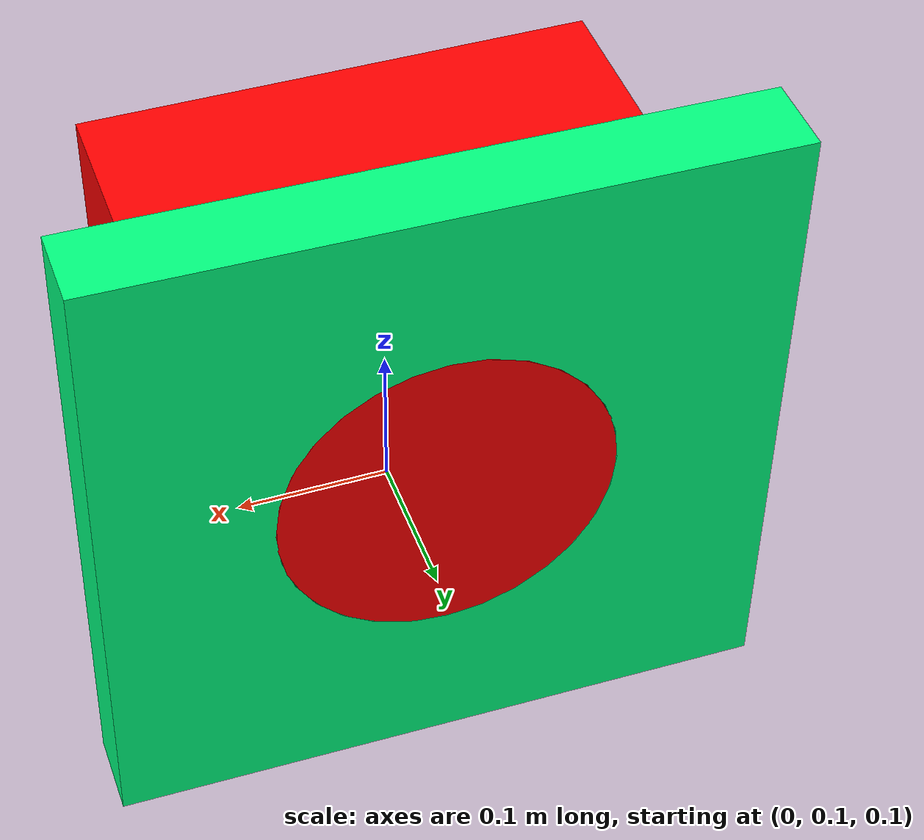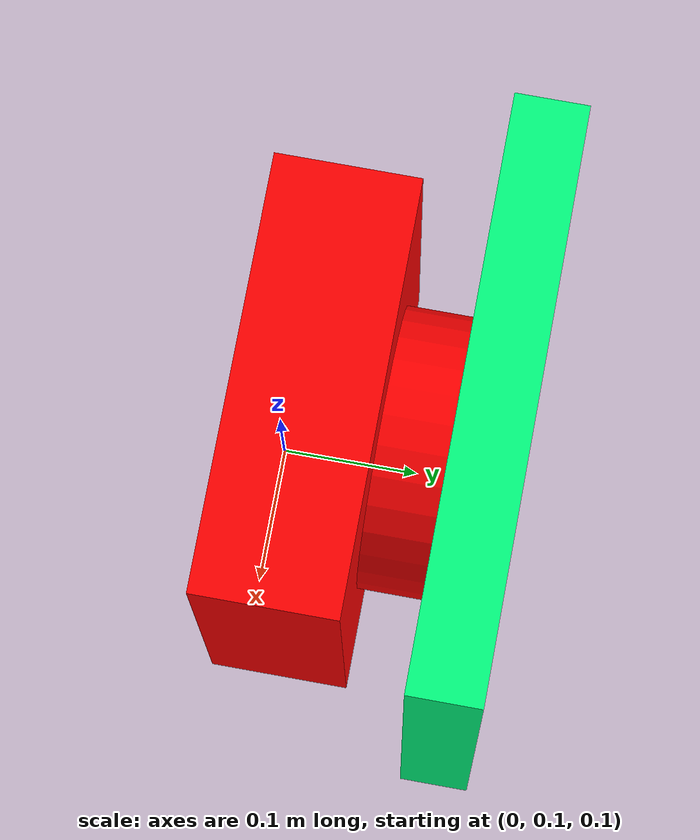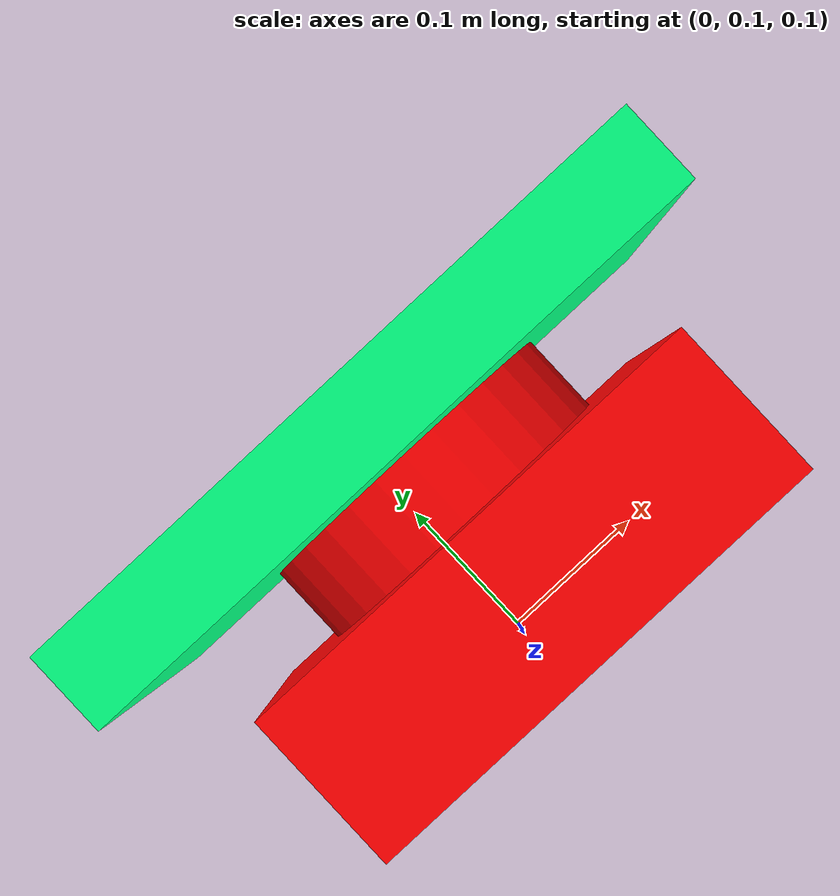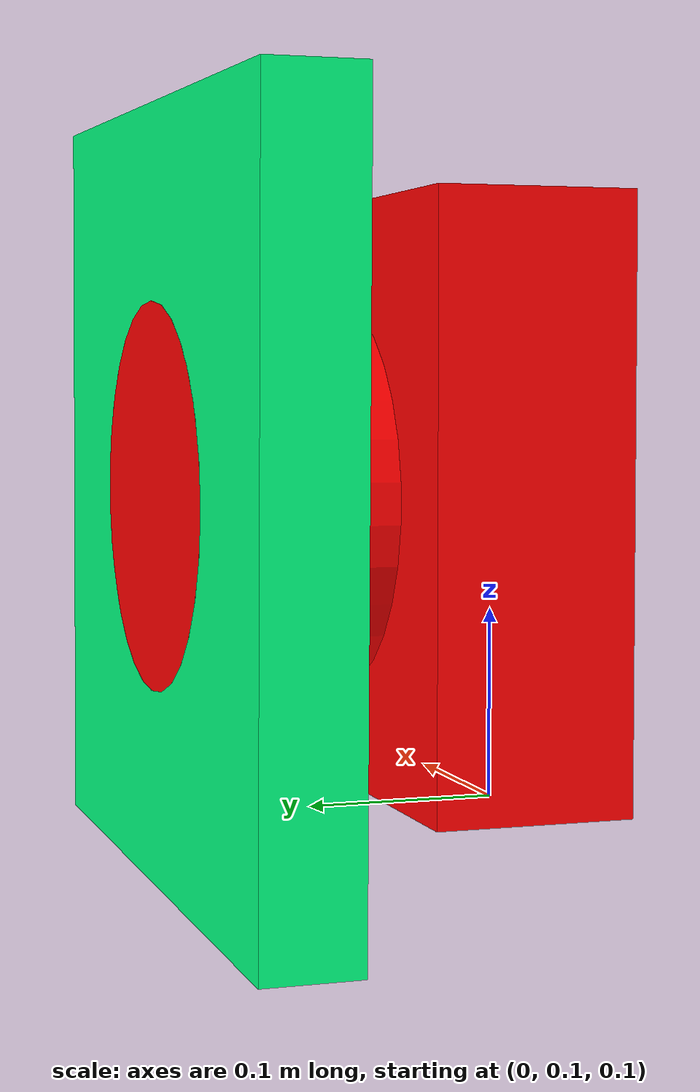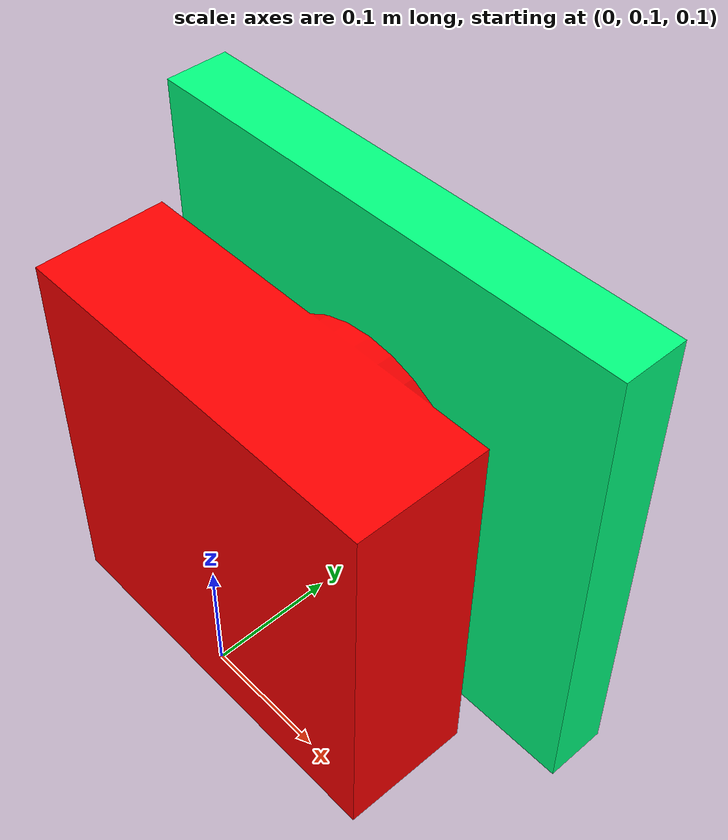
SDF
<?xml version="1.0" encoding="utf-8"?>
<sdf version="1.5">
  <model name="test">
    <pose>0 0 0 0 0 0</pose>
    <plugin name="clock" filename="libgz_clock.so">
      <topic>/gazebo/frc/time</topic>
    </plugin>
    <link name="base">
      <gravity>1</gravity>
      <self_collide>0</self_collide>
      <pose>0.0196980341134005 0.154380022333244 0.261152305235887 0 0 0</pose>
      <must_be_base_link>1</must_be_base_link>
      <velocity_decay>
        <linear>0</linear>
        <angular>0</angular>
      </velocity_decay>
      <inertial>
        <mass>32.7823001646924</mass>
        <pose>0 0 0 0 0 0</pose>
        <inertia>
          <ixx>0.293649694356258</ixx>
          <ixy>1.76623904178862E-17</ixy>
          <ixz>1.17093834628434E-17</ixz>
          <iyy>0.406911500823462</iyy>
          <iyz>2.17560846825539E-19</iyz>
          <izz>0.293649694356258</izz>
        </inertia>
      </inertial>
      <collision name="base_collision">
        <pose>-0.0196980341134005 -0.154380022333244 -0.261152305235887 0 0 0</pose>
        <geometry>
          <mesh>
            <scale>1 1 1</scale>
            <uri>model://test/meshes/base_col.STL</uri>
          </mesh>
        </geometry>
        <surface>
          <contact>
            <ode />
          </contact>
          <friction>
            <ode>
              <mu>0</mu>
              <mu2>0</mu2>
            </ode>
          </friction>
        </surface>
      </collision>
      <visual name="base_visual">
        <pose>-0.0196980341134005 -0.154380022333244 -0.261152305235887 0 0 0</pose>
        <material>
          <ambient>1 0 0 1</ambient>
          <diffuse>1 0 0 1</diffuse>
        </material>
        <geometry>
          <mesh>
            <scale>1 1 1</scale>
            <uri>model://test/meshes/base.STL</uri>
          </mesh>
        </geometry>
      </visual>
    </link>
    <link name="top">
      <gravity>1</gravity>
      <self_collide>0</self_collide>
      <pose>0.0196980341133985 0.253505388393347 0.261152305235885 0 0 0</pose>
      <must_be_base_link>0</must_be_base_link>
      <velocity_decay>
        <linear>0</linear>
        <angular>0</angular>
      </velocity_decay>
      <inertial>
        <mass>17.3588499176538</mass>
        <pose>0 0 0 0 0 0</pose>
        <inertia>
          <ixx>0.281013551860313</ixx>
          <ixy>5.16478339588306E-18</ixy>
          <ixz>6.20345754745369E-17</ixz>
          <iyy>0.55479424958827</iyy>
          <iyz>3.78115507654322E-18</iyz>
          <izz>0.281013551860313</izz>
        </inertia>
      </inertial>
      <collision name="top_collision">
        <pose>-0.0196980341133985 -0.253505388393347 -0.261152305235885 0 0 0</pose>
        <geometry>
          <mesh>
            <scale>1 1 1</scale>
            <uri>model://test/meshes/top_col.STL</uri>
          </mesh>
        </geometry>
        <surface>
          <contact>
            <ode />
          </contact>
          <friction>
            <ode>
              <mu>0</mu>
              <mu2>0</mu2>
            </ode>
          </friction>
        </surface>
      </collision>
      <visual name="top_visual">
        <pose>-0.0196980341133985 -0.253505388393347 -0.261152305235885 0 0 0</pose>
        <material>
          <ambient>0 1 0.501960784313725 1</ambient>
          <diffuse>0 1 0.501960784313725 1</diffuse>
        </material>
        <geometry>
          <mesh>
            <scale>1 1 1</scale>
            <uri>model://test/meshes/top.STL</uri>
          </mesh>
        </geometry>
      </visual>
    </link>
    <joint name="base-top" type="revolute">
      <parent>base</parent>
      <child>top</child>
      <pose>-1.07552855510562E-16 0 -1.11022302462516E-16 0 0 0</pose>
      <axis>
        <xyz>0 1 0</xyz>
        <dynamics>
          <damping>0.25</damping>
          <friction>0.1</friction>
        </dynamics>
        <limit>
          <effort>1</effort>
        </limit>
      </axis>
    </joint>
    <plugin name="base-top_motor" filename="libgz_dc_motor.so">
      <joint>base-top</joint>
      <topic>/gazebo/frc/simulator/pwm/0</topic>
      <multiplier>1</multiplier>
    </plugin>
  </model>
</sdf>
